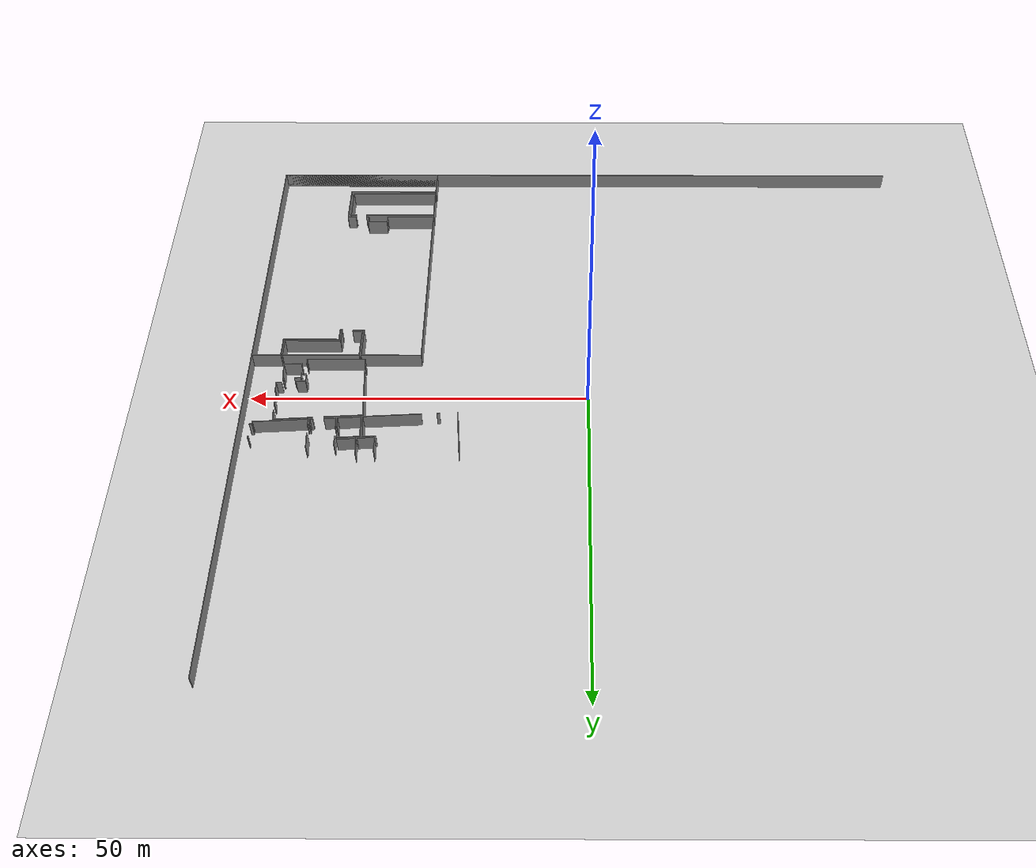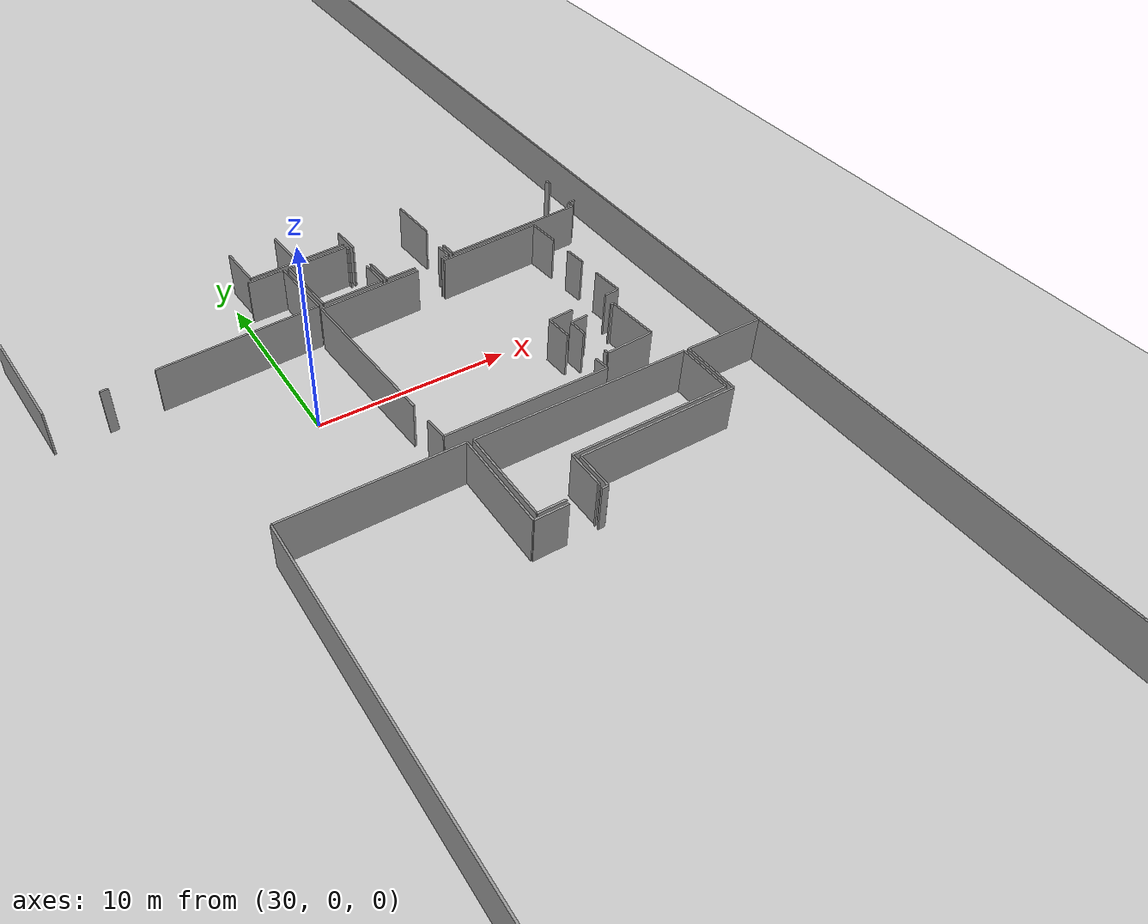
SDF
<sdf version="1.6">
 <world name="default">
  <model name="ground_plane">
   <static>1</static>
   <link name="link">
    <collision name="collision">
     <geometry><plane><normal>0 0 1</normal><size>100 100</size></plane></geometry>
     <surface><friction><ode><mu>100</mu><mu2>50</mu2></ode></friction></surface>
    </collision>
    <visual name="visual">
     <cast_shadows>0</cast_shadows>
     <geometry><plane><normal>0 0 1</normal><size>100 100</size></plane></geometry>
     <material>
      <script><uri>file://media/materials/scripts/gazebo.material</uri><name>Gazebo/Grey</name></script>
     </material>
    </visual>
   </link>
  </model>
  <model name="50025633">
   <static>1</static>
   <link name="Wall_130">
    <collision name="Wall_130_Collision">
     <geometry><box><size>8.49436430686 0.1 2.5</size></box></geometry>
     <pose>4.24718215343 0 1.25 0 0 0</pose>
    </collision>
    <visual name="Wall_130_Visual">
     <pose>4.24718215343 0 1.25 0 0 0</pose>
     <geometry><box><size>8.49436430686 0.1 2.5</size></box></geometry>
     <material>
      <script><uri>file://media/materials/scripts/gazebo.material</uri><name>Gazebo/Grey</name></script>
      <ambient>1 1 1 1</ambient>
     </material>
    </visual>
    <pose>83.0903697493 -42.3864042025 0 0 0 -3.08171883976</pose>
   </link>
   <link name="Wall_131">
    <collision name="Wall_131_Collision">
     <geometry><box><size>0.430264857634 0.1 2.5</size></box></geometry>
     <pose>0.215132428817 0 1.25 0 0 0</pose>
    </collision>
    <visual name="Wall_131_Visual">
     <pose>0.215132428817 0 1.25 0 0 0</pose>
     <geometry><box><size>0.430264857634 0.1 2.5</size></box></geometry>
     <material>
      <script><uri>file://media/materials/scripts/gazebo.material</uri><name>Gazebo/Grey</name></script>
      <ambient>1 1 1 1</ambient>
     </material>
    </visual>
    <pose>72.4068321995 -43.0273199052 0 0 0 -3.08280215441</pose>
   </link>
   <link name="Wall_132">
    <collision name="Wall_132_Collision">
     <geometry><box><size>6.96987600779 0.1 2.5</size></box></geometry>
     <pose>3.48493800389 0 1.25 0 0 0</pose>
    </collision>
    <visual name="Wall_132_Visual">
     <pose>3.48493800389 0 1.25 0 0 0</pose>
     <geometry><box><size>6.96987600779 0.1 2.5</size></box></geometry>
     <material>
      <script><uri>file://media/materials/scripts/gazebo.material</uri><name>Gazebo/Grey</name></script>
      <ambient>1 1 1 1</ambient>
     </material>
    </visual>
    <pose>69.4075499743 -43.2133061468 0 0 0 1.64444520283</pose>
   </link>
   <link name="Wall_139">
    <collision name="Wall_139_Collision">
     <geometry><box><size>1.98556669875 0.1 2.5</size></box></geometry>
     <pose>0.992783349377 0 1.25 0 0 0</pose>
    </collision>
    <visual name="Wall_139_Visual">
     <pose>0.992783349377 0 1.25 0 0 0</pose>
     <geometry><box><size>1.98556669875 0.1 2.5</size></box></geometry>
     <material>
      <script><uri>file://media/materials/scripts/gazebo.material</uri><name>Gazebo/Grey</name></script>
      <ambient>1 1 1 1</ambient>
     </material>
    </visual>
    <pose>80.8571374126 -38.8116317625 0 0 0 0.0512076761762</pose>
   </link>
   <link name="Wall_140">
    <collision name="Wall_140_Collision">
     <geometry><box><size>3.68491283273 0.1 2.5</size></box></geometry>
     <pose>1.84245641637 0 1.25 0 0 0</pose>
    </collision>
    <visual name="Wall_140_Visual">
     <pose>1.84245641637 0 1.25 0 0 0</pose>
     <geometry><box><size>3.68491283273 0.1 2.5</size></box></geometry>
     <material>
      <script><uri>file://media/materials/scripts/gazebo.material</uri><name>Gazebo/Grey</name></script>
      <ambient>1 1 1 1</ambient>
     </material>
    </visual>
    <pose>82.8401013777 -38.7099999365 0 0 0 -1.50282696455</pose>
   </link>
   <link name="Wall_186">
    <collision name="Wall_186_Collision">
     <geometry><box><size>0.455976945402 0.1 2.5</size></box></geometry>
     <pose>0.227988472701 0 1.25 0 0 0</pose>
    </collision>
    <visual name="Wall_186_Visual">
     <pose>0.227988472701 0 1.25 0 0 0</pose>
     <geometry><box><size>0.455976945402 0.1 2.5</size></box></geometry>
     <material>
      <script><uri>file://media/materials/scripts/gazebo.material</uri><name>Gazebo/Grey</name></script>
      <ambient>1 1 1 1</ambient>
     </material>
    </visual>
    <pose>90.7172030921 -41.8938709657 0 0 0 -3.06601739408</pose>
   </link>
   <link name="Wall_187">
    <collision name="Wall_187_Collision">
     <geometry><box><size>1.694666377 0.1 2.5</size></box></geometry>
     <pose>0.8473331885 0 1.25 0 0 0</pose>
    </collision>
    <visual name="Wall_187_Visual">
     <pose>0.8473331885 0 1.25 0 0 0</pose>
     <geometry><box><size>1.694666377 0.1 2.5</size></box></geometry>
     <material>
      <script><uri>file://media/materials/scripts/gazebo.material</uri><name>Gazebo/Grey</name></script>
      <ambient>1 1 1 1</ambient>
     </material>
    </visual>
    <pose>88.6897752031 -42.0357744028 0 0 0 -3.09314665161</pose>
   </link>
   <link name="Wall_188">
    <collision name="Wall_188_Collision">
     <geometry><box><size>1.57599199502 0.1 2.5</size></box></geometry>
     <pose>0.78799599751 0 1.25 0 0 0</pose>
    </collision>
    <visual name="Wall_188_Visual">
     <pose>0.78799599751 0 1.25 0 0 0</pose>
     <geometry><box><size>1.57599199502 0.1 2.5</size></box></geometry>
     <material>
      <script><uri>file://media/materials/scripts/gazebo.material</uri><name>Gazebo/Grey</name></script>
      <ambient>1 1 1 1</ambient>
     </material>
    </visual>
    <pose>86.997097141 -42.1178421023 0 0 0 1.63492475172</pose>
   </link>
   <link name="Wall_189">
    <collision name="Wall_189_Collision">
     <geometry><box><size>1.59387497712 0.1 2.5</size></box></geometry>
     <pose>0.796937488561 0 1.25 0 0 0</pose>
    </collision>
    <visual name="Wall_189_Visual">
     <pose>0.796937488561 0 1.25 0 0 0</pose>
     <geometry><box><size>1.59387497712 0.1 2.5</size></box></geometry>
     <material>
      <script><uri>file://media/materials/scripts/gazebo.material</uri><name>Gazebo/Grey</name></script>
      <ambient>1 1 1 1</ambient>
     </material>
    </visual>
    <pose>86.7907845342 -38.7407435638 0 0 0 1.62326627998</pose>
   </link>
   <link name="Wall_213">
    <collision name="Wall_213_Collision">
     <geometry><box><size>0.890931108793 0.1 2.5</size></box></geometry>
     <pose>0.445465554397 0 1.25 0 0 0</pose>
    </collision>
    <visual name="Wall_213_Visual">
     <pose>0.445465554397 0 1.25 0 0 0</pose>
     <geometry><box><size>0.890931108793 0.1 2.5</size></box></geometry>
     <material>
      <script><uri>file://media/materials/scripts/gazebo.material</uri><name>Gazebo/Grey</name></script>
      <ambient>1 1 1 1</ambient>
     </material>
    </visual>
    <pose>90.6516505644 -41.0053547268 0 0 0 -1.49715222777</pose>
   </link>
   <link name="Wall_240">
    <collision name="Wall_240_Collision">
     <geometry><box><size>7.94694463075 0.1 2.5</size></box></geometry>
     <pose>3.97347231538 0 1.25 0 0 0</pose>
    </collision>
    <visual name="Wall_240_Visual">
     <pose>3.97347231538 0 1.25 0 0 0</pose>
     <geometry><box><size>7.94694463075 0.1 2.5</size></box></geometry>
     <material>
      <script><uri>file://media/materials/scripts/gazebo.material</uri><name>Gazebo/Grey</name></script>
      <ambient>1 1 1 1</ambient>
     </material>
    </visual>
    <pose>98.923464883 -41.391936785 0 0 0 -3.07842197078</pose>
   </link>
   <link name="Wall_241">
    <collision name="Wall_241_Collision">
     <geometry><box><size>0.878509738158 0.1 2.5</size></box></geometry>
     <pose>0.439254869079 0 1.25 0 0 0</pose>
    </collision>
    <visual name="Wall_241_Visual">
     <pose>0.439254869079 0 1.25 0 0 0</pose>
     <geometry><box><size>0.878509738158 0.1 2.5</size></box></geometry>
     <material>
      <script><uri>file://media/materials/scripts/gazebo.material</uri><name>Gazebo/Grey</name></script>
      <ambient>1 1 1 1</ambient>
     </material>
    </visual>
    <pose>90.9923712611 -41.8936168861 0 0 0 1.62780286035</pose>
   </link>
   <link name="Wall_242">
    <collision name="Wall_242_Collision">
     <geometry><box><size>2.68506074281 0.1 2.5</size></box></geometry>
     <pose>1.3425303714 0 1.25 0 0 0</pose>
    </collision>
    <visual name="Wall_242_Visual">
     <pose>1.3425303714 0 1.25 0 0 0</pose>
     <geometry><box><size>2.68506074281 0.1 2.5</size></box></geometry>
     <material>
      <script><uri>file://media/materials/scripts/gazebo.material</uri><name>Gazebo/Grey</name></script>
      <ambient>1 1 1 1</ambient>
     </material>
    </visual>
    <pose>90.8253139471 -39.396014762 0 0 0 1.6237175858</pose>
   </link>
   <link name="Wall_244">
    <collision name="Wall_244_Collision">
     <geometry><box><size>0.401290179469 0.1 2.5</size></box></geometry>
     <pose>0.200645089735 0 1.25 0 0 0</pose>
    </collision>
    <visual name="Wall_244_Visual">
     <pose>0.200645089735 0 1.25 0 0 0</pose>
     <geometry><box><size>0.401290179469 0.1 2.5</size></box></geometry>
     <material>
      <script><uri>file://media/materials/scripts/gazebo.material</uri><name>Gazebo/Grey</name></script>
      <ambient>1 1 1 1</ambient>
     </material>
    </visual>
    <pose>99.1521364915 -38.4153946808 0 0 0 -1.54863402817</pose>
   </link>
   <link name="Wall_245">
    <collision name="Wall_245_Collision">
     <geometry><box><size>0.397393456176 0.1 2.5</size></box></geometry>
     <pose>0.198696728088 0 1.25 0 0 0</pose>
    </collision>
    <visual name="Wall_245_Visual">
     <pose>0.198696728088 0 1.25 0 0 0</pose>
     <geometry><box><size>0.397393456176 0.1 2.5</size></box></geometry>
     <material>
      <script><uri>file://media/materials/scripts/gazebo.material</uri><name>Gazebo/Grey</name></script>
      <ambient>1 1 1 1</ambient>
     </material>
    </visual>
    <pose>99.3147474132 -40.9466623473 0 0 0 -3.06960189544</pose>
   </link>
   <link name="Wall_246">
    <collision name="Wall_246_Collision">
     <geometry><box><size>0.416721470787 0.1 2.5</size></box></geometry>
     <pose>0.208360735393 0 1.25 0 0 0</pose>
    </collision>
    <visual name="Wall_246_Visual">
     <pose>0.208360735393 0 1.25 0 0 0</pose>
     <geometry><box><size>0.416721470787 0.1 2.5</size></box></geometry>
     <material>
      <script><uri>file://media/materials/scripts/gazebo.material</uri><name>Gazebo/Grey</name></script>
      <ambient>1 1 1 1</ambient>
     </material>
    </visual>
    <pose>98.9183832917 -40.9752462984 0 0 0 -1.55860180935</pose>
   </link>
   <link name="Wall_247">
    <collision name="Wall_247_Collision">
     <geometry><box><size>8.66985174544 0.1 2.5</size></box></geometry>
     <pose>4.33492587272 0 1.25 0 0 0</pose>
    </collision>
    <visual name="Wall_247_Visual">
     <pose>4.33492587272 0 1.25 0 0 0</pose>
     <geometry><box><size>8.66985174544 0.1 2.5</size></box></geometry>
     <material>
      <script><uri>file://media/materials/scripts/gazebo.material</uri><name>Gazebo/Grey</name></script>
      <ambient>1 1 1 1</ambient>
     </material>
    </visual>
    <pose>92.4374487871 -53.4809154487 0 0 0 -3.13935073486</pose>
   </link>
   <link name="Wall_248">
    <collision name="Wall_248_Collision">
     <geometry><box><size>1.20002964758 0.1 2.5</size></box></geometry>
     <pose>0.600014823789 0 1.25 0 0 0</pose>
    </collision>
    <visual name="Wall_248_Visual">
     <pose>0.600014823789 0 1.25 0 0 0</pose>
     <geometry><box><size>1.20002964758 0.1 2.5</size></box></geometry>
     <material>
      <script><uri>file://media/materials/scripts/gazebo.material</uri><name>Gazebo/Grey</name></script>
      <ambient>1 1 1 1</ambient>
     </material>
    </visual>
    <pose>83.7676188298 -53.5003525354 0 0 0 1.65325182039</pose>
   </link>
   <link name="Wall_249">
    <collision name="Wall_249_Collision">
     <geometry><box><size>8.51719383934 0.1 2.5</size></box></geometry>
     <pose>4.25859691967 0 1.25 0 0 0</pose>
    </collision>
    <visual name="Wall_249_Visual">
     <pose>4.25859691967 0 1.25 0 0 0</pose>
     <geometry><box><size>8.51719383934 0.1 2.5</size></box></geometry>
     <material>
      <script><uri>file://media/materials/scripts/gazebo.material</uri><name>Gazebo/Grey</name></script>
      <ambient>1 1 1 1</ambient>
     </material>
    </visual>
    <pose>83.5915416913 -51.1654883727 0 0 0 1.62770053983</pose>
   </link>
   <link name="Wall_250">
    <collision name="Wall_250_Collision">
     <geometry><box><size>5.59034301065 0.1 2.5</size></box></geometry>
     <pose>2.79517150532 0 1.25 0 0 0</pose>
    </collision>
    <visual name="Wall_250_Visual">
     <pose>2.79517150532 0 1.25 0 0 0</pose>
     <geometry><box><size>5.59034301065 0.1 2.5</size></box></geometry>
     <material>
      <script><uri>file://media/materials/scripts/gazebo.material</uri><name>Gazebo/Grey</name></script>
      <ambient>1 1 1 1</ambient>
     </material>
    </visual>
    <pose>83.1071390006 -42.6620805305 0 0 0 0.0613046248615</pose>
   </link>
   <link name="Wall_251">
    <collision name="Wall_251_Collision">
     <geometry><box><size>5.76935078558 0.1 2.5</size></box></geometry>
     <pose>2.88467539279 0 1.25 0 0 0</pose>
    </collision>
    <visual name="Wall_251_Visual">
     <pose>2.88467539279 0 1.25 0 0 0</pose>
     <geometry><box><size>5.76935078558 0.1 2.5</size></box></geometry>
     <material>
      <script><uri>file://media/materials/scripts/gazebo.material</uri><name>Gazebo/Grey</name></script>
      <ambient>1 1 1 1</ambient>
     </material>
    </visual>
    <pose>90.2864111897 -42.2032128361 0 0 0 0.0603708372096</pose>
   </link>
   <link name="Wall_252">
    <collision name="Wall_252_Collision">
     <geometry><box><size>1.76304895216 0.1 2.5</size></box></geometry>
     <pose>0.881524476078 0 1.25 0 0 0</pose>
    </collision>
    <visual name="Wall_252_Visual">
     <pose>0.881524476078 0 1.25 0 0 0</pose>
     <geometry><box><size>1.76304895216 0.1 2.5</size></box></geometry>
     <material>
      <script><uri>file://media/materials/scripts/gazebo.material</uri><name>Gazebo/Grey</name></script>
      <ambient>1 1 1 1</ambient>
     </material>
    </visual>
    <pose>96.0452515705 -41.855123832 0 0 0 -1.50402205751</pose>
   </link>
   <link name="Wall_253">
    <collision name="Wall_253_Collision">
     <geometry><box><size>1.18073310804 0.1 2.5</size></box></geometry>
     <pose>0.59036655402 0 1.25 0 0 0</pose>
    </collision>
    <visual name="Wall_253_Visual">
     <pose>0.59036655402 0 1.25 0 0 0</pose>
     <geometry><box><size>1.18073310804 0.1 2.5</size></box></geometry>
     <material>
      <script><uri>file://media/materials/scripts/gazebo.material</uri><name>Gazebo/Grey</name></script>
      <ambient>1 1 1 1</ambient>
     </material>
    </visual>
    <pose>96.2380979604 -44.8254409868 0 0 0 -1.50166593791</pose>
   </link>
   <link name="Wall_254">
    <collision name="Wall_254_Collision">
     <geometry><box><size>1.71855998055 0.1 2.5</size></box></geometry>
     <pose>0.859279990274 0 1.25 0 0 0</pose>
    </collision>
    <visual name="Wall_254_Visual">
     <pose>0.859279990274 0 1.25 0 0 0</pose>
     <geometry><box><size>1.71855998055 0.1 2.5</size></box></geometry>
     <material>
      <script><uri>file://media/materials/scripts/gazebo.material</uri><name>Gazebo/Grey</name></script>
      <ambient>1 1 1 1</ambient>
     </material>
    </visual>
    <pose>96.3664081407 -47.1590347517 0 0 0 -1.50792101374</pose>
   </link>
   <link name="Wall_255">
    <collision name="Wall_255_Collision">
     <geometry><box><size>0.845357087691 0.1 2.5</size></box></geometry>
     <pose>0.422678543846 0 1.25 0 0 0</pose>
    </collision>
    <visual name="Wall_255_Visual">
     <pose>0.422678543846 0 1.25 0 0 0</pose>
     <geometry><box><size>0.845357087691 0.1 2.5</size></box></geometry>
     <material>
      <script><uri>file://media/materials/scripts/gazebo.material</uri><name>Gazebo/Grey</name></script>
      <ambient>1 1 1 1</ambient>
     </material>
    </visual>
    <pose>96.4743919558 -48.8741988554 0 0 0 -3.06351833455</pose>
   </link>
   <link name="Wall_256">
    <collision name="Wall_256_Collision">
     <geometry><box><size>1.3896863227 0.1 2.5</size></box></geometry>
     <pose>0.694843161348 0 1.25 0 0 0</pose>
    </collision>
    <visual name="Wall_256_Visual">
     <pose>0.694843161348 0 1.25 0 0 0</pose>
     <geometry><box><size>1.3896863227 0.1 2.5</size></box></geometry>
     <material>
      <script><uri>file://media/materials/scripts/gazebo.material</uri><name>Gazebo/Grey</name></script>
      <ambient>1 1 1 1</ambient>
     </material>
    </visual>
    <pose>93.5484116851 -49.0688238022 0 0 0 -3.07535894</pose>
   </link>
   <link name="Wall_257">
    <collision name="Wall_257_Collision">
     <geometry><box><size>1.43028693046 0.1 2.5</size></box></geometry>
     <pose>0.71514346523 0 1.25 0 0 0</pose>
    </collision>
    <visual name="Wall_257_Visual">
     <pose>0.71514346523 0 1.25 0 0 0</pose>
     <geometry><box><size>1.43028693046 0.1 2.5</size></box></geometry>
     <material>
      <script><uri>file://media/materials/scripts/gazebo.material</uri><name>Gazebo/Grey</name></script>
      <ambient>1 1 1 1</ambient>
     </material>
    </visual>
    <pose>92.161772459 -49.1608006047 0 0 0 -1.51818992349</pose>
   </link>
   <link name="Wall_258">
    <collision name="Wall_258_Collision">
     <geometry><box><size>0.811493746112 0.1 2.5</size></box></geometry>
     <pose>0.405746873056 0 1.25 0 0 0</pose>
    </collision>
    <visual name="Wall_258_Visual">
     <pose>0.405746873056 0 1.25 0 0 0</pose>
     <geometry><box><size>0.811493746112 0.1 2.5</size></box></geometry>
     <material>
      <script><uri>file://media/materials/scripts/gazebo.material</uri><name>Gazebo/Grey</name></script>
      <ambient>1 1 1 1</ambient>
     </material>
    </visual>
    <pose>92.3721503389 -52.6720531534 0 0 0 -1.49024225989</pose>
   </link>
   <link name="Wall_259">
    <collision name="Wall_259_Collision">
     <geometry><box><size>3.35580233248 0.1 2.5</size></box></geometry>
     <pose>1.67790116624 0 1.25 0 0 0</pose>
    </collision>
    <visual name="Wall_259_Visual">
     <pose>1.67790116624 0 1.25 0 0 0</pose>
     <geometry><box><size>3.35580233248 0.1 2.5</size></box></geometry>
     <material>
      <script><uri>file://media/materials/scripts/gazebo.material</uri><name>Gazebo/Grey</name></script>
      <ambient>1 1 1 1</ambient>
     </material>
    </visual>
    <pose>86.7247238473 -42.1422337405 0 0 0 -3.08428402074</pose>
   </link>
   <link name="Wall_260">
    <collision name="Wall_260_Collision">
     <geometry><box><size>3.61604794827 0.1 2.5</size></box></geometry>
     <pose>1.80802397414 0 1.25 0 0 0</pose>
    </collision>
    <visual name="Wall_260_Visual">
     <pose>1.80802397414 0 1.25 0 0 0</pose>
     <geometry><box><size>3.61604794827 0.1 2.5</size></box></geometry>
     <material>
      <script><uri>file://media/materials/scripts/gazebo.material</uri><name>Gazebo/Grey</name></script>
      <ambient>1 1 1 1</ambient>
     </material>
    </visual>
    <pose>83.374430703 -42.3344449314 0 0 0 1.63622405368</pose>
   </link>
   <link name="Wall_261">
    <collision name="Wall_261_Collision">
     <geometry><box><size>3.39058110117 0.1 2.5</size></box></geometry>
     <pose>1.69529055059 0 1.25 0 0 0</pose>
    </collision>
    <visual name="Wall_261_Visual">
     <pose>1.69529055059 0 1.25 0 0 0</pose>
     <geometry><box><size>3.39058110117 0.1 2.5</size></box></geometry>
     <material>
      <script><uri>file://media/materials/scripts/gazebo.material</uri><name>Gazebo/Grey</name></script>
      <ambient>1 1 1 1</ambient>
     </material>
    </visual>
    <pose>83.1380096677 -38.7261339889 0 0 0 0.0648658786733</pose>
   </link>
   <link name="Wall_262">
    <collision name="Wall_262_Collision">
     <geometry><box><size>0.269252719705 0.1 2.5</size></box></geometry>
     <pose>0.134626359853 0 1.25 0 0 0</pose>
    </collision>
    <visual name="Wall_262_Visual">
     <pose>0.134626359853 0 1.25 0 0 0</pose>
     <geometry><box><size>0.269252719705 0.1 2.5</size></box></geometry>
     <material>
      <script><uri>file://media/materials/scripts/gazebo.material</uri><name>Gazebo/Grey</name></script>
      <ambient>1 1 1 1</ambient>
     </material>
    </visual>
    <pose>86.5214601953 -38.5063551651 0 0 0 -1.55050652069</pose>
   </link>
   <link name="Wall_263">
    <collision name="Wall_263_Collision">
     <geometry><box><size>1.56211763654 0.1 2.5</size></box></geometry>
     <pose>0.781058818268 0 1.25 0 0 0</pose>
    </collision>
    <visual name="Wall_263_Visual">
     <pose>0.781058818268 0 1.25 0 0 0</pose>
     <geometry><box><size>1.56211763654 0.1 2.5</size></box></geometry>
     <material>
      <script><uri>file://media/materials/scripts/gazebo.material</uri><name>Gazebo/Grey</name></script>
      <ambient>1 1 1 1</ambient>
     </material>
    </visual>
    <pose>86.6307144082 -40.58294745 0 0 0 -1.51057917311</pose>
   </link>
   <link name="Wall_264">
    <collision name="Wall_264_Collision">
     <geometry><box><size>2.70276012586 0.1 2.5</size></box></geometry>
     <pose>1.35138006293 0 1.25 0 0 0</pose>
    </collision>
    <visual name="Wall_264_Visual">
     <pose>1.35138006293 0 1.25 0 0 0</pose>
     <geometry><box><size>2.70276012586 0.1 2.5</size></box></geometry>
     <material>
      <script><uri>file://media/materials/scripts/gazebo.material</uri><name>Gazebo/Grey</name></script>
      <ambient>1 1 1 1</ambient>
     </material>
    </visual>
    <pose>86.4720417199 -38.1987918517 0 0 0 -3.07446794769</pose>
   </link>
   <link name="Wall_265">
    <collision name="Wall_265_Collision">
     <geometry><box><size>2.51024977282 0.1 2.5</size></box></geometry>
     <pose>1.25512488641 0 1.25 0 0 0</pose>
    </collision>
    <visual name="Wall_265_Visual">
     <pose>1.25512488641 0 1.25 0 0 0</pose>
     <geometry><box><size>2.51024977282 0.1 2.5</size></box></geometry>
     <material>
      <script><uri>file://media/materials/scripts/gazebo.material</uri><name>Gazebo/Grey</name></script>
      <ambient>1 1 1 1</ambient>
     </material>
    </visual>
    <pose>83.7753682566 -38.3800776213 0 0 0 1.63871442629</pose>
   </link>
   <link name="Wall_276">
    <collision name="Wall_276_Collision">
     <geometry><box><size>2.40096317501 0.1 2.5</size></box></geometry>
     <pose>1.2004815875 0 1.25 0 0 0</pose>
    </collision>
    <visual name="Wall_276_Visual">
     <pose>1.2004815875 0 1.25 0 0 0</pose>
     <geometry><box><size>2.40096317501 0.1 2.5</size></box></geometry>
     <material>
      <script><uri>file://media/materials/scripts/gazebo.material</uri><name>Gazebo/Grey</name></script>
      <ambient>1 1 1 1</ambient>
     </material>
    </visual>
    <pose>83.51633414 -38.4103130895 0 0 0 -3.08590043636</pose>
   </link>
   <link name="Wall_277">
    <collision name="Wall_277_Collision">
     <geometry><box><size>2.50359420255 0.1 2.5</size></box></geometry>
     <pose>1.25179710127 0 1.25 0 0 0</pose>
    </collision>
    <visual name="Wall_277_Visual">
     <pose>1.25179710127 0 1.25 0 0 0</pose>
     <geometry><box><size>2.50359420255 0.1 2.5</size></box></geometry>
     <material>
      <script><uri>file://media/materials/scripts/gazebo.material</uri><name>Gazebo/Grey</name></script>
      <ambient>1 1 1 1</ambient>
     </material>
    </visual>
    <pose>81.1190934441 -38.5439589407 0 0 0 1.6261343934</pose>
   </link>
   <link name="Wall_289">
    <collision name="Wall_289_Collision">
     <geometry><box><size>2.67386296785 0.1 2.5</size></box></geometry>
     <pose>1.33693148393 0 1.25 0 0 0</pose>
    </collision>
    <visual name="Wall_289_Visual">
     <pose>1.33693148393 0 1.25 0 0 0</pose>
     <geometry><box><size>2.67386296785 0.1 2.5</size></box></geometry>
     <material>
      <script><uri>file://media/materials/scripts/gazebo.material</uri><name>Gazebo/Grey</name></script>
      <ambient>1 1 1 1</ambient>
     </material>
    </visual>
    <pose>95.7703374812 -52.4685354219 0 0 0 -3.08354827666</pose>
   </link>
   <link name="Wall_290">
    <collision name="Wall_290_Collision">
     <geometry><box><size>0.248216652313 0.1 2.5</size></box></geometry>
     <pose>0.124108326157 0 1.25 0 0 0</pose>
    </collision>
    <visual name="Wall_290_Visual">
     <pose>0.124108326157 0 1.25 0 0 0</pose>
     <geometry><box><size>0.248216652313 0.1 2.5</size></box></geometry>
     <material>
      <script><uri>file://media/materials/scripts/gazebo.material</uri><name>Gazebo/Grey</name></script>
      <ambient>1 1 1 1</ambient>
     </material>
    </visual>
    <pose>93.1009775711 -52.6236509963 0 0 0 1.61431391701</pose>
   </link>
   <link name="Wall_291">
    <collision name="Wall_291_Collision">
     <geometry><box><size>1.00015725191 0.1 2.5</size></box></geometry>
     <pose>0.500078625955 0 1.25 0 0 0</pose>
    </collision>
    <visual name="Wall_291_Visual">
     <pose>0.500078625955 0 1.25 0 0 0</pose>
     <geometry><box><size>1.00015725191 0.1 2.5</size></box></geometry>
     <material>
      <script><uri>file://media/materials/scripts/gazebo.material</uri><name>Gazebo/Grey</name></script>
      <ambient>1 1 1 1</ambient>
     </material>
    </visual>
    <pose>92.9866417669 -50.8538597862 0 0 0 1.62315240396</pose>
   </link>
   <link name="Wall_292">
    <collision name="Wall_292_Collision">
     <geometry><box><size>0.962113614913 0.1 2.5</size></box></geometry>
     <pose>0.481056807456 0 1.25 0 0 0</pose>
    </collision>
    <visual name="Wall_292_Visual">
     <pose>0.481056807456 0 1.25 0 0 0</pose>
     <geometry><box><size>0.962113614913 0.1 2.5</size></box></geometry>
     <material>
      <script><uri>file://media/materials/scripts/gazebo.material</uri><name>Gazebo/Grey</name></script>
      <ambient>1 1 1 1</ambient>
     </material>
    </visual>
    <pose>92.9343013765 -49.8550730161 0 0 0 0.0656722640752</pose>
   </link>
   <link name="Wall_293">
    <collision name="Wall_293_Collision">
     <geometry><box><size>0.174298581601 0.1 2.5</size></box></geometry>
     <pose>0.0871492908004 0 1.25 0 0 0</pose>
    </collision>
    <visual name="Wall_293_Visual">
     <pose>0.0871492908004 0 1.25 0 0 0</pose>
     <geometry><box><size>0.174298581601 0.1 2.5</size></box></geometry>
     <material>
      <script><uri>file://media/materials/scripts/gazebo.material</uri><name>Gazebo/Grey</name></script>
      <ambient>1 1 1 1</ambient>
     </material>
    </visual>
    <pose>95.4133556923 -49.6852208269 0 0 0 0.0</pose>
   </link>
   <link name="Wall_294">
    <collision name="Wall_294_Collision">
     <geometry><box><size>2.7893033698 0.1 2.5</size></box></geometry>
     <pose>1.3946516849 0 1.25 0 0 0</pose>
    </collision>
    <visual name="Wall_294_Visual">
     <pose>1.3946516849 0 1.25 0 0 0</pose>
     <geometry><box><size>2.7893033698 0.1 2.5</size></box></geometry>
     <material>
      <script><uri>file://media/materials/scripts/gazebo.material</uri><name>Gazebo/Grey</name></script>
      <ambient>1 1 1 1</ambient>
     </material>
    </visual>
    <pose>95.5876542739 -49.6852208269 0 0 0 -1.50525520819</pose>
   </link>
   <link name="Wall_351">
    <collision name="Wall_351_Collision">
     <geometry><box><size>25.5033633782 0.1 2.5</size></box></geometry>
     <pose>12.7516816891 0 1.25 0 0 0</pose>
    </collision>
    <visual name="Wall_351_Visual">
     <pose>12.7516816891 0 1.25 0 0 0</pose>
     <geometry><box><size>25.5033633782 0.1 2.5</size></box></geometry>
     <material>
      <script><uri>file://media/materials/scripts/gazebo.material</uri><name>Gazebo/Grey</name></script>
      <ambient>1 1 1 1</ambient>
     </material>
    </visual>
    <pose>100.870984749 -95.3153699081 0 0 0 3.14159265359</pose>
   </link>
   <link name="Wall_352">
    <collision name="Wall_352_Collision">
     <geometry><box><size>4.25151336141 0.1 2.5</size></box></geometry>
     <pose>2.1257566807 0 1.25 0 0 0</pose>
    </collision>
    <visual name="Wall_352_Visual">
     <pose>2.1257566807 0 1.25 0 0 0</pose>
     <geometry><box><size>4.25151336141 0.1 2.5</size></box></geometry>
     <material>
      <script><uri>file://media/materials/scripts/gazebo.material</uri><name>Gazebo/Grey</name></script>
      <ambient>1 1 1 1</ambient>
     </material>
    </visual>
    <pose>75.3676213706 -95.3153699081 0 0 0 1.57079632679</pose>
   </link>
   <link name="Wall_353">
    <collision name="Wall_353_Collision">
     <geometry><box><size>14.0351010919 0.1 2.5</size></box></geometry>
     <pose>7.01755054595 0 1.25 0 0 0</pose>
    </collision>
    <visual name="Wall_353_Visual">
     <pose>7.01755054595 0 1.25 0 0 0</pose>
     <geometry><box><size>14.0351010919 0.1 2.5</size></box></geometry>
     <material>
      <script><uri>file://media/materials/scripts/gazebo.material</uri><name>Gazebo/Grey</name></script>
      <ambient>1 1 1 1</ambient>
     </material>
    </visual>
    <pose>75.3676213706 -91.0638565467 0 0 0 0.0</pose>
   </link>
   <link name="Wall_354">
    <collision name="Wall_354_Collision">
     <geometry><box><size>6.17959614053 0.1 2.5</size></box></geometry>
     <pose>3.08979807027 0 1.25 0 0 0</pose>
    </collision>
    <visual name="Wall_354_Visual">
     <pose>3.08979807027 0 1.25 0 0 0</pose>
     <geometry><box><size>6.17959614053 0.1 2.5</size></box></geometry>
     <material>
      <script><uri>file://media/materials/scripts/gazebo.material</uri><name>Gazebo/Grey</name></script>
      <ambient>1 1 1 1</ambient>
     </material>
    </visual>
    <pose>89.4027224625 -91.0638565467 0 0 0 1.57079632679</pose>
   </link>
   <link name="Wall_355">
    <collision name="Wall_355_Collision">
     <geometry><box><size>1.2775120529 0.1 2.5</size></box></geometry>
     <pose>0.63875602645 0 1.25 0 0 0</pose>
    </collision>
    <visual name="Wall_355_Visual">
     <pose>0.63875602645 0 1.25 0 0 0</pose>
     <geometry><box><size>1.2775120529 0.1 2.5</size></box></geometry>
     <material>
      <script><uri>file://media/materials/scripts/gazebo.material</uri><name>Gazebo/Grey</name></script>
      <ambient>1 1 1 1</ambient>
     </material>
    </visual>
    <pose>89.4027224625 -84.8842604061 0 0 0 3.14159265359</pose>
   </link>
   <link name="Wall_356">
    <collision name="Wall_356_Collision">
     <geometry><box><size>0.399413076205 0.1 2.5</size></box></geometry>
     <pose>0.199706538102 0 1.25 0 0 0</pose>
    </collision>
    <visual name="Wall_356_Visual">
     <pose>0.199706538102 0 1.25 0 0 0</pose>
     <geometry><box><size>0.399413076205 0.1 2.5</size></box></geometry>
     <material>
      <script><uri>file://media/materials/scripts/gazebo.material</uri><name>Gazebo/Grey</name></script>
      <ambient>1 1 1 1</ambient>
     </material>
    </visual>
    <pose>86.4064891921 -84.8842604061 0 0 0 3.14159265359</pose>
   </link>
   <link name="Wall_357">
    <collision name="Wall_357_Collision">
     <geometry><box><size>1.16215993038 0.1 2.5</size></box></geometry>
     <pose>0.581079965191 0 1.25 0 0 0</pose>
    </collision>
    <visual name="Wall_357_Visual">
     <pose>0.581079965191 0 1.25 0 0 0</pose>
     <geometry><box><size>1.16215993038 0.1 2.5</size></box></geometry>
     <material>
      <script><uri>file://media/materials/scripts/gazebo.material</uri><name>Gazebo/Grey</name></script>
      <ambient>1 1 1 1</ambient>
     </material>
    </visual>
    <pose>86.0070761159 -84.8842604061 0 0 0 1.57079632679</pose>
   </link>
   <link name="Wall_358">
    <collision name="Wall_358_Collision">
     <geometry><box><size>3.07245713995 0.1 2.5</size></box></geometry>
     <pose>1.53622856998 0 1.25 0 0 0</pose>
    </collision>
    <visual name="Wall_358_Visual">
     <pose>1.53622856998 0 1.25 0 0 0</pose>
     <geometry><box><size>3.07245713995 0.1 2.5</size></box></geometry>
     <material>
      <script><uri>file://media/materials/scripts/gazebo.material</uri><name>Gazebo/Grey</name></script>
      <ambient>1 1 1 1</ambient>
     </material>
    </visual>
    <pose>86.0070761159 -83.7221004758 0 0 0 3.14159265359</pose>
   </link>
   <link name="Wall_359">
    <collision name="Wall_359_Collision">
     <geometry><box><size>1.16215993038 0.1 2.5</size></box></geometry>
     <pose>0.581079965191 0 1.25 0 0 0</pose>
    </collision>
    <visual name="Wall_359_Visual">
     <pose>0.581079965191 0 1.25 0 0 0</pose>
     <geometry><box><size>1.16215993038 0.1 2.5</size></box></geometry>
     <material>
      <script><uri>file://media/materials/scripts/gazebo.material</uri><name>Gazebo/Grey</name></script>
      <ambient>1 1 1 1</ambient>
     </material>
    </visual>
    <pose>82.9346189759 -83.7221004758 0 0 0 -1.57079632679</pose>
   </link>
   <link name="Wall_360">
    <collision name="Wall_360_Collision">
     <geometry><box><size>7.52698007381 0.1 2.5</size></box></geometry>
     <pose>3.76349003691 0 1.25 0 0 0</pose>
    </collision>
    <visual name="Wall_360_Visual">
     <pose>3.76349003691 0 1.25 0 0 0</pose>
     <geometry><box><size>7.52698007381 0.1 2.5</size></box></geometry>
     <material>
      <script><uri>file://media/materials/scripts/gazebo.material</uri><name>Gazebo/Grey</name></script>
      <ambient>1 1 1 1</ambient>
     </material>
    </visual>
    <pose>82.9346189759 -84.8842604061 0 0 0 3.14159265359</pose>
   </link>
   <link name="Wall_361">
    <collision name="Wall_361_Collision">
     <geometry><box><size>30.5524324942 0.1 2.5</size></box></geometry>
     <pose>15.2762162471 0 1.25 0 0 0</pose>
    </collision>
    <visual name="Wall_361_Visual">
     <pose>15.2762162471 0 1.25 0 0 0</pose>
     <geometry><box><size>30.5524324942 0.1 2.5</size></box></geometry>
     <material>
      <script><uri>file://media/materials/scripts/gazebo.material</uri><name>Gazebo/Grey</name></script>
      <ambient>1 1 1 1</ambient>
     </material>
    </visual>
    <pose>75.4076389021 -84.8842604061 0 0 0 1.57079632679</pose>
   </link>
   <link name="Wall_362">
    <collision name="Wall_362_Collision">
     <geometry><box><size>9.0238898311 0.1 2.5</size></box></geometry>
     <pose>4.51194491555 0 1.25 0 0 0</pose>
    </collision>
    <visual name="Wall_362_Visual">
     <pose>4.51194491555 0 1.25 0 0 0</pose>
     <geometry><box><size>9.0238898311 0.1 2.5</size></box></geometry>
     <material>
      <script><uri>file://media/materials/scripts/gazebo.material</uri><name>Gazebo/Grey</name></script>
      <ambient>1 1 1 1</ambient>
     </material>
    </visual>
    <pose>75.4076389021 -54.3318279119 0 0 0 0.0</pose>
   </link>
   <link name="Wall_363">
    <collision name="Wall_363_Collision">
     <geometry><box><size>5.17090026742 0.1 2.5</size></box></geometry>
     <pose>2.58545013371 0 1.25 0 0 0</pose>
    </collision>
    <visual name="Wall_363_Visual">
     <pose>2.58545013371 0 1.25 0 0 0</pose>
     <geometry><box><size>5.17090026742 0.1 2.5</size></box></geometry>
     <material>
      <script><uri>file://media/materials/scripts/gazebo.material</uri><name>Gazebo/Grey</name></script>
      <ambient>1 1 1 1</ambient>
     </material>
    </visual>
    <pose>84.4315287332 -54.3318279119 0 0 0 -1.57079632679</pose>
   </link>
   <link name="Wall_364">
    <collision name="Wall_364_Collision">
     <geometry><box><size>1.71224218864 0.1 2.5</size></box></geometry>
     <pose>0.856121094321 0 1.25 0 0 0</pose>
    </collision>
    <visual name="Wall_364_Visual">
     <pose>0.856121094321 0 1.25 0 0 0</pose>
     <geometry><box><size>1.71224218864 0.1 2.5</size></box></geometry>
     <material>
      <script><uri>file://media/materials/scripts/gazebo.material</uri><name>Gazebo/Grey</name></script>
      <ambient>1 1 1 1</ambient>
     </material>
    </visual>
    <pose>84.4315287332 -59.5027281793 0 0 0 0.0</pose>
   </link>
   <link name="Wall_365">
    <collision name="Wall_365_Collision">
     <geometry><box><size>0.334114627996 0.1 2.5</size></box></geometry>
     <pose>0.167057313998 0 1.25 0 0 0</pose>
    </collision>
    <visual name="Wall_365_Visual">
     <pose>0.167057313998 0 1.25 0 0 0</pose>
     <geometry><box><size>0.334114627996 0.1 2.5</size></box></geometry>
     <material>
      <script><uri>file://media/materials/scripts/gazebo.material</uri><name>Gazebo/Grey</name></script>
      <ambient>1 1 1 1</ambient>
     </material>
    </visual>
    <pose>87.7503160115 -59.5027281793 0 0 0 0.0</pose>
   </link>
   <link name="Wall_366">
    <collision name="Wall_366_Collision">
     <geometry><box><size>1.97292782235 0.1 2.5</size></box></geometry>
     <pose>0.986463911174 0 1.25 0 0 0</pose>
    </collision>
    <visual name="Wall_366_Visual">
     <pose>0.986463911174 0 1.25 0 0 0</pose>
     <geometry><box><size>1.97292782235 0.1 2.5</size></box></geometry>
     <material>
      <script><uri>file://media/materials/scripts/gazebo.material</uri><name>Gazebo/Grey</name></script>
      <ambient>1 1 1 1</ambient>
     </material>
    </visual>
    <pose>88.0844306395 -59.5027281793 0 0 0 1.57079632679</pose>
   </link>
   <link name="Wall_367">
    <collision name="Wall_367_Collision">
     <geometry><box><size>8.41257439767 0.1 2.5</size></box></geometry>
     <pose>4.20628719884 0 1.25 0 0 0</pose>
    </collision>
    <visual name="Wall_367_Visual">
     <pose>4.20628719884 0 1.25 0 0 0</pose>
     <geometry><box><size>8.41257439767 0.1 2.5</size></box></geometry>
     <material>
      <script><uri>file://media/materials/scripts/gazebo.material</uri><name>Gazebo/Grey</name></script>
      <ambient>1 1 1 1</ambient>
     </material>
    </visual>
    <pose>88.0844306395 -57.529800357 0 0 0 0.0</pose>
   </link>
   <link name="Wall_368">
    <collision name="Wall_368_Collision">
     <geometry><box><size>3.19009597856 0.1 2.5</size></box></geometry>
     <pose>1.59504798928 0 1.25 0 0 0</pose>
    </collision>
    <visual name="Wall_368_Visual">
     <pose>1.59504798928 0 1.25 0 0 0</pose>
     <geometry><box><size>3.19009597856 0.1 2.5</size></box></geometry>
     <material>
      <script><uri>file://media/materials/scripts/gazebo.material</uri><name>Gazebo/Grey</name></script>
      <ambient>1 1 1 1</ambient>
     </material>
    </visual>
    <pose>96.4970050371 -57.529800357 0 0 0 1.57079632679</pose>
   </link>
   <link name="Wall_369">
    <collision name="Wall_369_Collision">
     <geometry><box><size>4.35238294872 0.1 2.5</size></box></geometry>
     <pose>2.17619147436 0 1.25 0 0 0</pose>
    </collision>
    <visual name="Wall_369_Visual">
     <pose>2.17619147436 0 1.25 0 0 0</pose>
     <geometry><box><size>4.35238294872 0.1 2.5</size></box></geometry>
     <material>
      <script><uri>file://media/materials/scripts/gazebo.material</uri><name>Gazebo/Grey</name></script>
      <ambient>1 1 1 1</ambient>
     </material>
    </visual>
    <pose>96.4970050371 -54.3397043784 0 0 0 0.0</pose>
   </link>
   <link name="Wall_370">
    <collision name="Wall_370_Collision">
     <geometry><box><size>40.9756712211 0.1 2.5</size></box></geometry>
     <pose>20.4878356105 0 1.25 0 0 0</pose>
    </collision>
    <visual name="Wall_370_Visual">
     <pose>20.4878356105 0 1.25 0 0 0</pose>
     <geometry><box><size>40.9756712211 0.1 2.5</size></box></geometry>
     <material>
      <script><uri>file://media/materials/scripts/gazebo.material</uri><name>Gazebo/Grey</name></script>
      <ambient>1 1 1 1</ambient>
     </material>
    </visual>
    <pose>100.849387986 -54.3397043784 0 0 0 -1.5702692637</pose>
   </link>
   <link name="Wall_371">
    <collision name="Wall_371_Collision">
     <geometry><box><size>8.42235646093 0.1 2.5</size></box></geometry>
     <pose>4.21117823046 0 1.25 0 0 0</pose>
    </collision>
    <visual name="Wall_371_Visual">
     <pose>4.21117823046 0 1.25 0 0 0</pose>
     <geometry><box><size>8.42235646093 0.1 2.5</size></box></geometry>
     <material>
      <script><uri>file://media/materials/scripts/gazebo.material</uri><name>Gazebo/Grey</name></script>
      <ambient>1 1 1 1</ambient>
     </material>
    </visual>
    <pose>96.2505478591 -57.287408452 0 0 0 3.14159265359</pose>
   </link>
   <link name="Wall_372">
    <collision name="Wall_372_Collision">
     <geometry><box><size>1.98143948778 0.1 2.5</size></box></geometry>
     <pose>0.990719743888 0 1.25 0 0 0</pose>
    </collision>
    <visual name="Wall_372_Visual">
     <pose>0.990719743888 0 1.25 0 0 0</pose>
     <geometry><box><size>1.98143948778 0.1 2.5</size></box></geometry>
     <material>
      <script><uri>file://media/materials/scripts/gazebo.material</uri><name>Gazebo/Grey</name></script>
      <ambient>1 1 1 1</ambient>
     </material>
    </visual>
    <pose>87.8281913981 -57.287408452 0 0 0 -1.57079632679</pose>
   </link>
   <link name="Wall_373">
    <collision name="Wall_373_Collision">
     <geometry><box><size>0.0857518531928 0.1 2.5</size></box></geometry>
     <pose>0.0428759265964 0 1.25 0 0 0</pose>
    </collision>
    <visual name="Wall_373_Visual">
     <pose>0.0428759265964 0 1.25 0 0 0</pose>
     <geometry><box><size>0.0857518531928 0.1 2.5</size></box></geometry>
     <material>
      <script><uri>file://media/materials/scripts/gazebo.material</uri><name>Gazebo/Grey</name></script>
      <ambient>1 1 1 1</ambient>
     </material>
    </visual>
    <pose>87.8281913981 -59.2688479397 0 0 0 3.14159265359</pose>
   </link>
   <link name="Wall_374">
    <collision name="Wall_374_Collision">
     <geometry><box><size>1.44825352059 0.1 2.5</size></box></geometry>
     <pose>0.724126760295 0 1.25 0 0 0</pose>
    </collision>
    <visual name="Wall_374_Visual">
     <pose>0.724126760295 0 1.25 0 0 0</pose>
     <geometry><box><size>1.44825352059 0.1 2.5</size></box></geometry>
     <material>
      <script><uri>file://media/materials/scripts/gazebo.material</uri><name>Gazebo/Grey</name></script>
      <ambient>1 1 1 1</ambient>
     </material>
    </visual>
    <pose>86.1813746975 -59.2688479397 0 0 0 3.14159265359</pose>
   </link>
   <link name="Wall_375">
    <collision name="Wall_375_Collision">
     <geometry><box><size>4.91732886153 0.1 2.5</size></box></geometry>
     <pose>2.45866443077 0 1.25 0 0 0</pose>
    </collision>
    <visual name="Wall_375_Visual">
     <pose>2.45866443077 0 1.25 0 0 0</pose>
     <geometry><box><size>4.91732886153 0.1 2.5</size></box></geometry>
     <material>
      <script><uri>file://media/materials/scripts/gazebo.material</uri><name>Gazebo/Grey</name></script>
      <ambient>1 1 1 1</ambient>
     </material>
    </visual>
    <pose>84.7331211769 -59.2688479397 0 0 0 1.57079632679</pose>
   </link>
   <link name="Wall_376">
    <collision name="Wall_376_Collision">
     <geometry><box><size>11.5049767835 0.1 2.5</size></box></geometry>
     <pose>5.75248839174 0 1.25 0 0 0</pose>
    </collision>
    <visual name="Wall_376_Visual">
     <pose>5.75248839174 0 1.25 0 0 0</pose>
     <geometry><box><size>11.5049767835 0.1 2.5</size></box></geometry>
     <material>
      <script><uri>file://media/materials/scripts/gazebo.material</uri><name>Gazebo/Grey</name></script>
      <ambient>1 1 1 1</ambient>
     </material>
    </visual>
    <pose>84.7331211769 -54.3515190782 0 0 0 0.0</pose>
   </link>
   <link name="Wall_377">
    <collision name="Wall_377_Collision">
     <geometry><box><size>2.93591577109 0.1 2.5</size></box></geometry>
     <pose>1.46795788554 0 1.25 0 0 0</pose>
    </collision>
    <visual name="Wall_377_Visual">
     <pose>1.46795788554 0 1.25 0 0 0</pose>
     <geometry><box><size>2.93591577109 0.1 2.5</size></box></geometry>
     <material>
      <script><uri>file://media/materials/scripts/gazebo.material</uri><name>Gazebo/Grey</name></script>
      <ambient>1 1 1 1</ambient>
     </material>
    </visual>
    <pose>96.2380979604 -54.3515190782 0 0 0 -1.56655576372</pose>
   </link>
   <link name="Wall_378">
    <collision name="Wall_378_Collision">
     <geometry><box><size>13.5722951642 0.1 2.5</size></box></geometry>
     <pose>6.78614758212 0 1.25 0 0 0</pose>
    </collision>
    <visual name="Wall_378_Visual">
     <pose>6.78614758212 0 1.25 0 0 0</pose>
     <geometry><box><size>13.5722951642 0.1 2.5</size></box></geometry>
     <material>
      <script><uri>file://media/materials/scripts/gazebo.material</uri><name>Gazebo/Grey</name></script>
      <ambient>1 1 1 1</ambient>
     </material>
    </visual>
    <pose>88.9749795148 -90.5972394255 0 0 0 3.14159265359</pose>
   </link>
   <link name="Wall_379">
    <collision name="Wall_379_Collision">
     <geometry><box><size>5.24483742084 0.1 2.5</size></box></geometry>
     <pose>2.62241871042 0 1.25 0 0 0</pose>
    </collision>
    <visual name="Wall_379_Visual">
     <pose>2.62241871042 0 1.25 0 0 0</pose>
     <geometry><box><size>5.24483742084 0.1 2.5</size></box></geometry>
     <material>
      <script><uri>file://media/materials/scripts/gazebo.material</uri><name>Gazebo/Grey</name></script>
      <ambient>1 1 1 1</ambient>
     </material>
    </visual>
    <pose>75.4026843506 -90.5972394255 0 0 0 1.57079632679</pose>
   </link>
   <link name="Wall_380">
    <collision name="Wall_380_Collision">
     <geometry><box><size>11.0614809027 0.1 2.5</size></box></geometry>
     <pose>5.53074045137 0 1.25 0 0 0</pose>
    </collision>
    <visual name="Wall_380_Visual">
     <pose>5.53074045137 0 1.25 0 0 0</pose>
     <geometry><box><size>11.0614809027 0.1 2.5</size></box></geometry>
     <material>
      <script><uri>file://media/materials/scripts/gazebo.material</uri><name>Gazebo/Grey</name></script>
      <ambient>1 1 1 1</ambient>
     </material>
    </visual>
    <pose>75.4026843506 -85.3524020047 0 0 0 0.0</pose>
   </link>
   <link name="Wall_381">
    <collision name="Wall_381_Collision">
     <geometry><box><size>0.876574499304 0.1 2.5</size></box></geometry>
     <pose>0.438287249652 0 1.25 0 0 0</pose>
    </collision>
    <visual name="Wall_381_Visual">
     <pose>0.438287249652 0 1.25 0 0 0</pose>
     <geometry><box><size>0.876574499304 0.1 2.5</size></box></geometry>
     <material>
      <script><uri>file://media/materials/scripts/gazebo.material</uri><name>Gazebo/Grey</name></script>
      <ambient>1 1 1 1</ambient>
     </material>
    </visual>
    <pose>88.0742674569 -85.3524020047 0 0 0 0.0</pose>
   </link>
   <link name="Wall_382">
    <collision name="Wall_382_Collision">
     <geometry><box><size>5.24489296295 0.1 2.5</size></box></geometry>
     <pose>2.62244648147 0 1.25 0 0 0</pose>
    </collision>
    <visual name="Wall_382_Visual">
     <pose>2.62244648147 0 1.25 0 0 0</pose>
     <geometry><box><size>5.24489296295 0.1 2.5</size></box></geometry>
     <material>
      <script><uri>file://media/materials/scripts/gazebo.material</uri><name>Gazebo/Grey</name></script>
      <ambient>1 1 1 1</ambient>
     </material>
    </visual>
    <pose>88.9508419562 -85.3524020047 0 0 0 -1.56619420354</pose>
   </link>
   <link name="Wall_383">
    <collision name="Wall_383_Collision">
     <geometry><box><size>95.3153699081 0.1 2.5</size></box></geometry>
     <pose>47.657684954 0 1.25 0 0 0</pose>
    </collision>
    <visual name="Wall_383_Visual">
     <pose>47.657684954 0 1.25 0 0 0</pose>
     <geometry><box><size>95.3153699081 0.1 2.5</size></box></geometry>
     <material>
      <script><uri>file://media/materials/scripts/gazebo.material</uri><name>Gazebo/Grey</name></script>
      <ambient>1 1 1 1</ambient>
     </material>
    </visual>
    <pose>100.870984749 -95.3153699081 0 0 0 1.57079632679</pose>
   </link>
   <link name="Wall_384">
    <collision name="Wall_384_Collision">
     <geometry><box><size>100.870984749 0.1 2.5</size></box></geometry>
     <pose>50.4354923744 0 1.25 0 0 0</pose>
    </collision>
    <visual name="Wall_384_Visual">
     <pose>50.4354923744 0 1.25 0 0 0</pose>
     <geometry><box><size>100.870984749 0.1 2.5</size></box></geometry>
     <material>
      <script><uri>file://media/materials/scripts/gazebo.material</uri><name>Gazebo/Grey</name></script>
      <ambient>1 1 1 1</ambient>
     </material>
    </visual>
    <pose>100.870984749 -95.3153699081 0 0 0 3.14159265359</pose>
   </link>
   <pose>-50.4 47.6653699081 0 0 0 0</pose>
  </model>
 </world>
</sdf>
